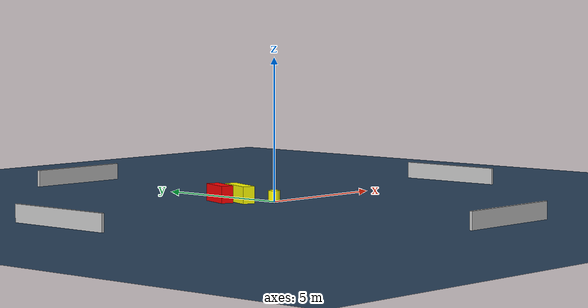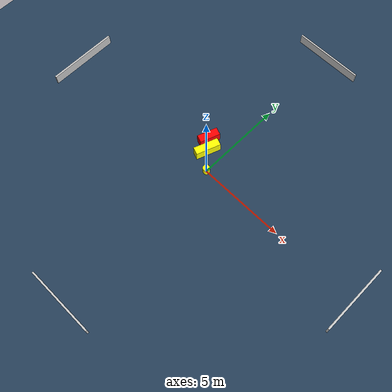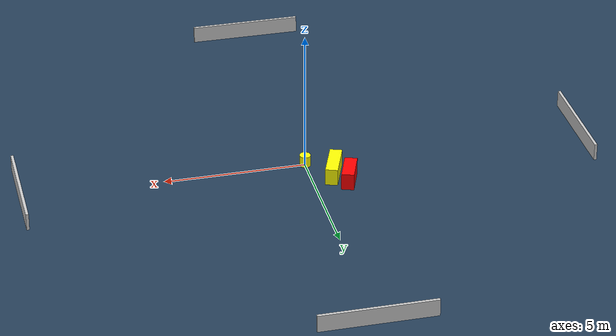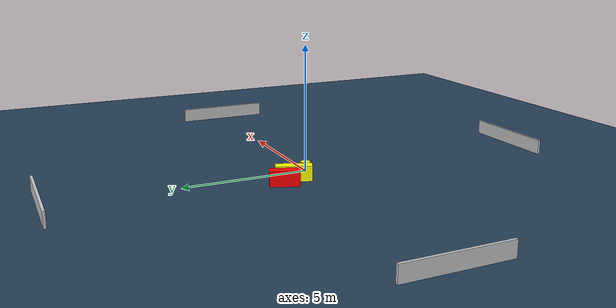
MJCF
<?xml version="1.0" ?>
<mujoco model="generated_environment">
  <option timestep="0.01" integrator="RK4" cone="elliptic"/>
  <default>
    <geom density="1"/>
  </default>
  <asset>
    <texture builtin="gradient" height="3072" name="skybox" rgb1="0.3 0.5 0.7" rgb2="0 0 0" type="skybox" width="512"/>
    <texture builtin="checker" height="300" name="groundplane" rgb1="0.2 0.3 0.4" rgb2="0.1 0.2 0.3" type="2d" width="300"/>
    <material name="groundplane" reflectance="0.2" texrepeat="5 5" texture="groundplane"/>
  </asset>
  <worldbody>
    <light dir="0 0 -1" directional="true" pos="0 0 1.5"/>
    <geom condim="3" friction="0.5 0.005 0.001" material="groundplane" name="floor" pos="0 0 0" size="0 0 0.05" type="plane"/>
    <body name="walls">
      <geom name="wall_1" condim="4" pos="-10.0 0.0 0.3" rgba="0.800000011920929 0.800000011920929 0.800000011920929 1.0" size="0.05 2.0 0.3" type="box"/>
      <geom name="wall_2" condim="4" pos="10.0 0.0 0.3" rgba="0.800000011920929 0.800000011920929 0.800000011920929 1.0" size="0.05 2.0 0.3" type="box"/>
      <geom name="wall_3" condim="4" pos="0.0 -10.0 0.3" rgba="0.800000011920929 0.800000011920929 0.800000011920929 1.0" size="2.0 0.05 0.3" type="box"/>
      <geom name="wall_4" condim="4" pos="0.0 10.0 0.3" rgba="0.800000011920929 0.800000011920929 0.800000011920929 1.0" size="2.0 0.05 0.3" type="box"/>
    </body>
    <body name="robot">
      <joint name="joint_x" type="slide" pos="0 0 0" axis="1 0 0"/>
      <joint name="joint_y" type="slide" pos="0 0 0" axis="0 1 0"/>
      <geom name="robot" type="cylinder" pos="0.0 0.0 0.2" size="0.2 0.2 0.0" mass="5.0" friction="1.0 0.005 0.0001" condim="4" rgba="1.0 1.0 0.0 1.0"/>
    </body>
    <body name="obstacle_1_movable">
      <geom name="obstacle_1_movable" condim="4" pos="-0.8151444943168449 0.8740249652144458 0.3" euler="0 0 69.58437816076884" friction="0.0 0.005 0.001" rgba="1.0 1.0 0.0 1.0" size="0.7036203745836078 0.2174905472990155 0.3" type="box" mass="0.1"/>
      <joint type="free"/>
    </body>
    <body name="obstacle_2_static">
      <geom name="obstacle_2_static" condim="4" pos="-1.2328509820911557 1.4248806097786804 0.3" euler="0 0 250.0217963758099" friction="0.0 0.005 0.001" rgba="1.0 0.0 0.0 1.0" size="0.5754769751987894 0.2206327206966533 0.3" type="box"/>
    </body>
  </worldbody>
  <actuator>
    <motor name="actuator_x" joint="joint_x" gear="1" ctrlrange="-1 1"/>
    <motor name="actuator_y" joint="joint_y" gear="1" ctrlrange="-1 1"/>
  </actuator>
</mujoco>
